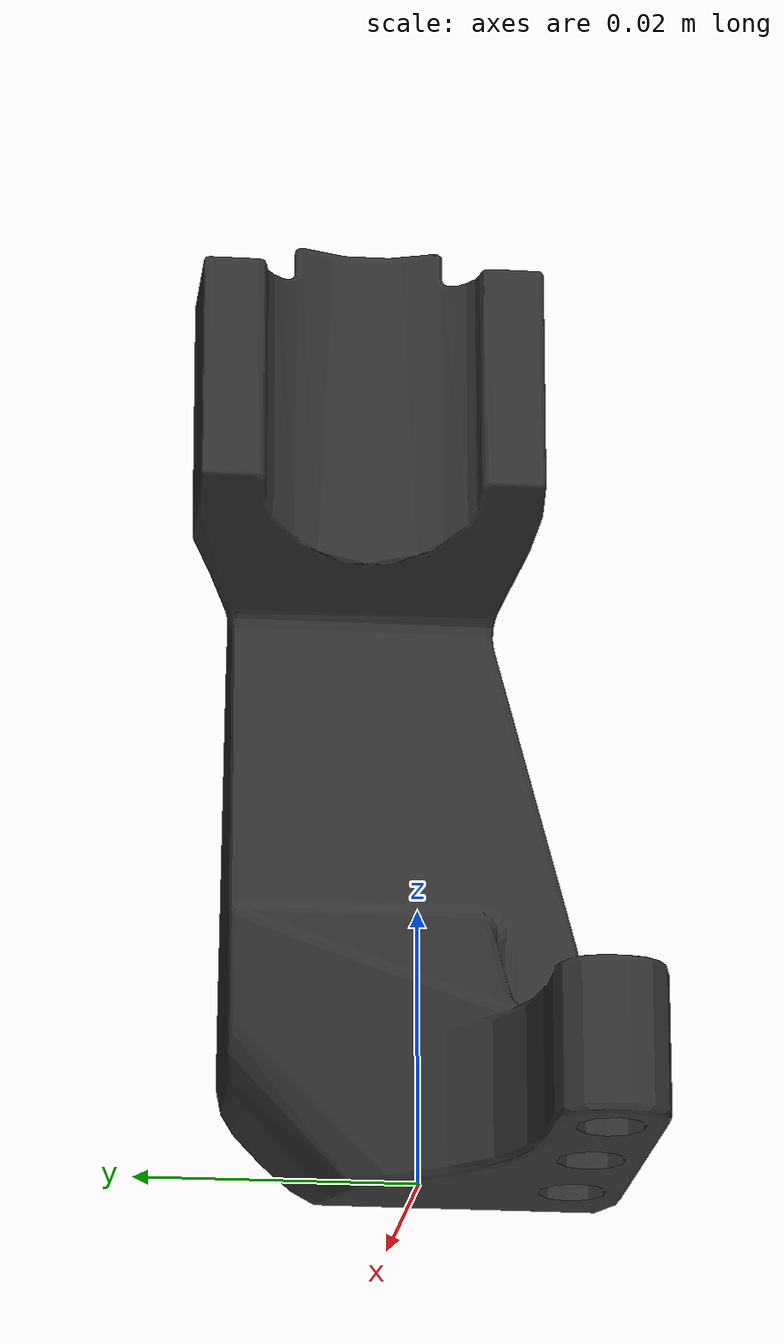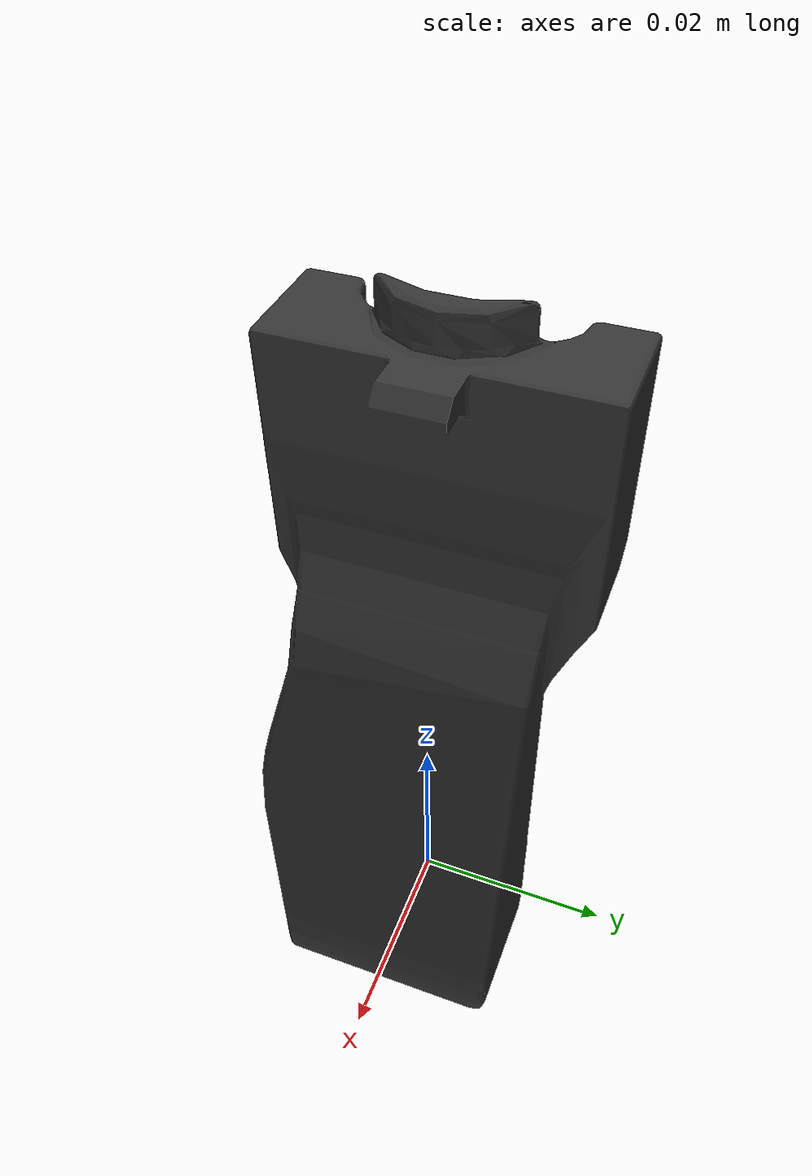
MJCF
<mujoco model="finger_v6">
  <default>
    <default class="visual">
      <geom group="2" type="mesh" contype="0" conaffinity="0"/>
    </default>
    <default class="collision">
      <geom group="3" type="mesh"/>
    </default>
  </default>
  <asset>
    <material name="mtl_finger_v6" specular="0.20000000000000004" shininess="1.0" rgba="0.20000000 0.20000000 0.20000000 1.0"/>
    <mesh file="finger_v6.obj"/>
    <mesh file="finger_v6_collision_0.obj"/>
    <mesh file="finger_v6_collision_1.obj"/>
    <mesh file="finger_v6_collision_2.obj"/>
    <mesh file="finger_v6_collision_3.obj"/>
    <mesh file="finger_v6_collision_4.obj"/>
    <mesh file="finger_v6_collision_5.obj"/>
    <mesh file="finger_v6_collision_6.obj"/>
    <mesh file="finger_v6_collision_7.obj"/>
    <mesh file="finger_v6_collision_8.obj"/>
    <mesh file="finger_v6_collision_9.obj"/>
    <mesh file="finger_v6_collision_10.obj"/>
    <mesh file="finger_v6_collision_11.obj"/>
    <mesh file="finger_v6_collision_12.obj"/>
    <mesh file="finger_v6_collision_13.obj"/>
    <mesh file="finger_v6_collision_14.obj"/>
    <mesh file="finger_v6_collision_15.obj"/>
    <mesh file="finger_v6_collision_16.obj"/>
    <mesh file="finger_v6_collision_17.obj"/>
    <mesh file="finger_v6_collision_18.obj"/>
    <mesh file="finger_v6_collision_19.obj"/>
    <mesh file="finger_v6_collision_20.obj"/>
  </asset>
  <worldbody>
    <body name="finger_v6">
      <geom material="mtl_finger_v6" mesh="finger_v6" class="visual"/>
      <geom mesh="finger_v6_collision_0" rgba="0.4751143813252433 0.7104265329838257 0.9964134009036133 1" class="collision"/>
      <geom mesh="finger_v6_collision_1" rgba="0.9699887790576093 0.39231025556308896 0.04172558757186906 1" class="collision"/>
      <geom mesh="finger_v6_collision_2" rgba="0.7129456712270671 0.23390272268012824 0.654189410599561 1" class="collision"/>
      <geom mesh="finger_v6_collision_3" rgba="0.9942245805824886 0.9880519382723197 0.8938081133389724 1" class="collision"/>
      <geom mesh="finger_v6_collision_4" rgba="0.10313800690116848 0.8591260685615829 0.03140721255392298 1" class="collision"/>
      <geom mesh="finger_v6_collision_5" rgba="0.9524165446939526 0.1207927507973161 0.4456862696932482 1" class="collision"/>
      <geom mesh="finger_v6_collision_6" rgba="0.7896268274866691 0.191236333808674 0.08692550702992274 1" class="collision"/>
      <geom mesh="finger_v6_collision_7" rgba="0.4306296324154192 0.7757601050588432 0.7858879783679307 1" class="collision"/>
      <geom mesh="finger_v6_collision_8" rgba="0.16771205461926297 0.5015917153738161 0.5451429066714363 1" class="collision"/>
      <geom mesh="finger_v6_collision_9" rgba="0.9968280317328579 0.553936211138544 0.7853669846420078 1" class="collision"/>
      <geom mesh="finger_v6_collision_10" rgba="0.9713365479352901 0.9980504343685062 0.504747270536084 1" class="collision"/>
      <geom mesh="finger_v6_collision_11" rgba="0.9714517037457696 0.6144813647302017 0.5155956617503087 1" class="collision"/>
      <geom mesh="finger_v6_collision_12" rgba="0.02897522489076998 0.7132184172817896 0.06161966249138273 1" class="collision"/>
      <geom mesh="finger_v6_collision_13" rgba="0.730770209852407 0.7090454854418159 0.25943346482886576 1" class="collision"/>
      <geom mesh="finger_v6_collision_14" rgba="0.7247241115548602 0.7775247841806044 0.7682853091883498 1" class="collision"/>
      <geom mesh="finger_v6_collision_15" rgba="0.22624277216574684 0.5194983176164568 0.5091827272029479 1" class="collision"/>
      <geom mesh="finger_v6_collision_16" rgba="0.03863029285119546 0.42993230347040745 0.4526291259330121 1" class="collision"/>
      <geom mesh="finger_v6_collision_17" rgba="0.6065741000630118 0.9388456706383892 0.6912013958342768 1" class="collision"/>
      <geom mesh="finger_v6_collision_18" rgba="0.8687708618515277 0.9070431670803024 0.7787887670714609 1" class="collision"/>
      <geom mesh="finger_v6_collision_19" rgba="0.8159249433716682 0.9441636929932569 0.23377398340063238 1" class="collision"/>
      <geom mesh="finger_v6_collision_20" rgba="0.3965290497131845 0.9802181447244595 0.06930669754656216 1" class="collision"/>
    </body>
  </worldbody>
</mujoco>
